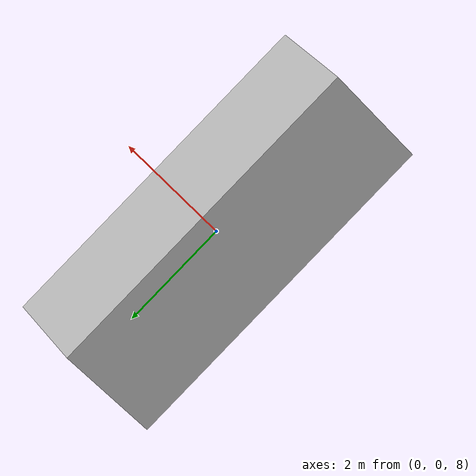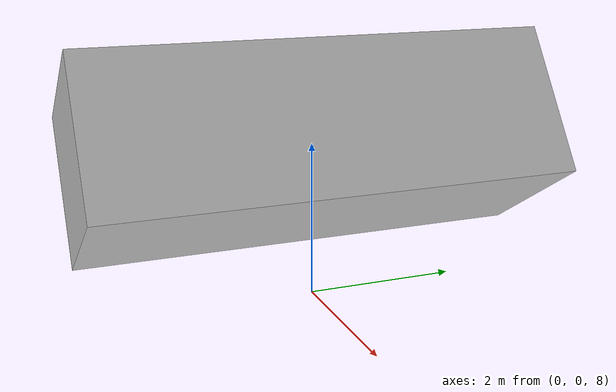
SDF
<?xml version="1.0" ?>
<sdf version="1.6">
  <model name="USA">
    <link name="link">
      <pose>0 0 10 0 1 0</pose>
      <collision name="collision">
        <geometry>
          <box>
            <size>2 6 2</size>
          </box>
        </geometry>
      </collision>
      <visual name="visual">
        <geometry>
          <box>
            <size>2 6 2</size>
          </box>
        </geometry>
        <material>
          <script>
            <uri>model://usa/materials/scripts</uri>
            <uri>model://usa/materials/textures</uri>
            <name>Text/USA</name>
          </script>
        </material>
      </visual>
    </link>
  </model>
</sdf>
